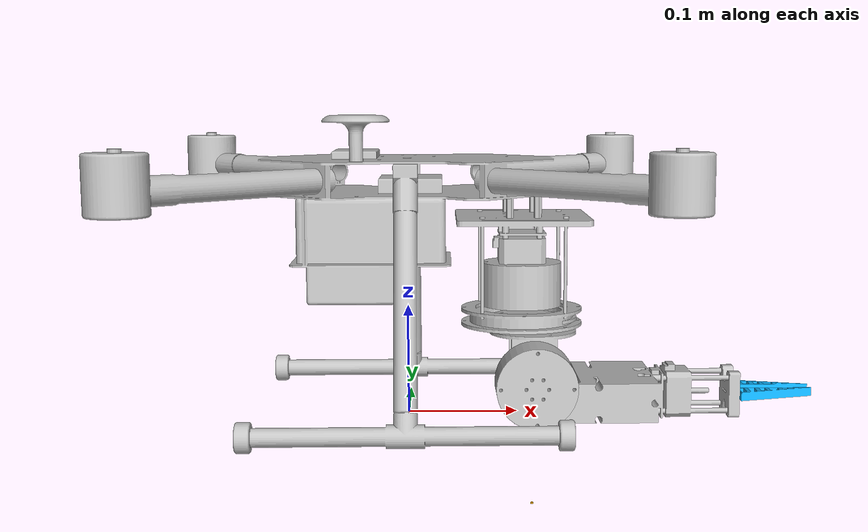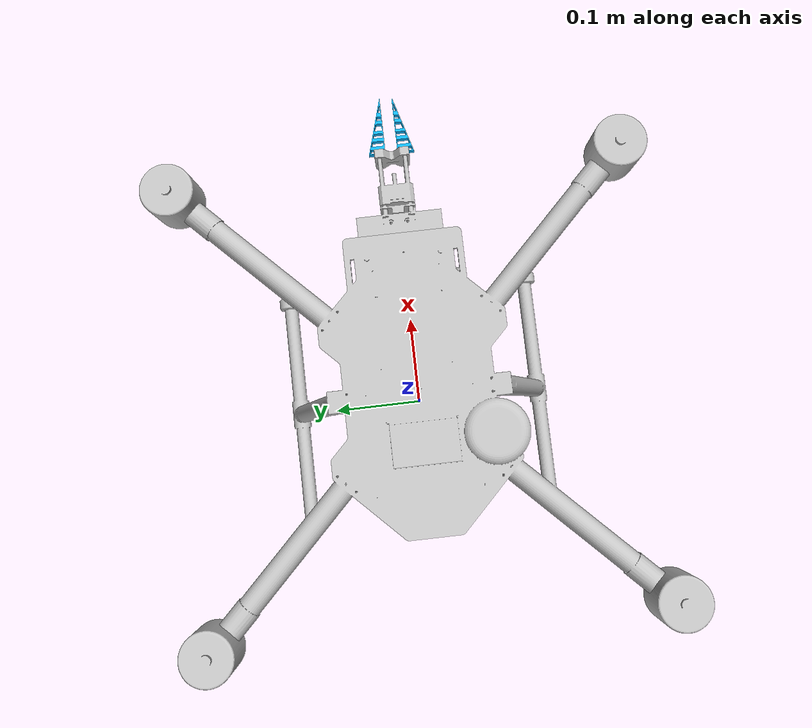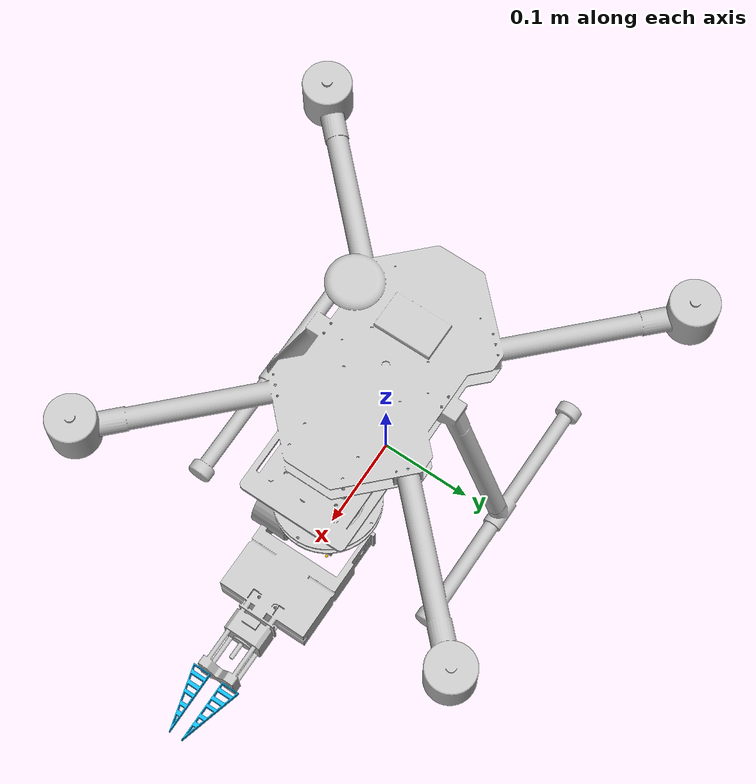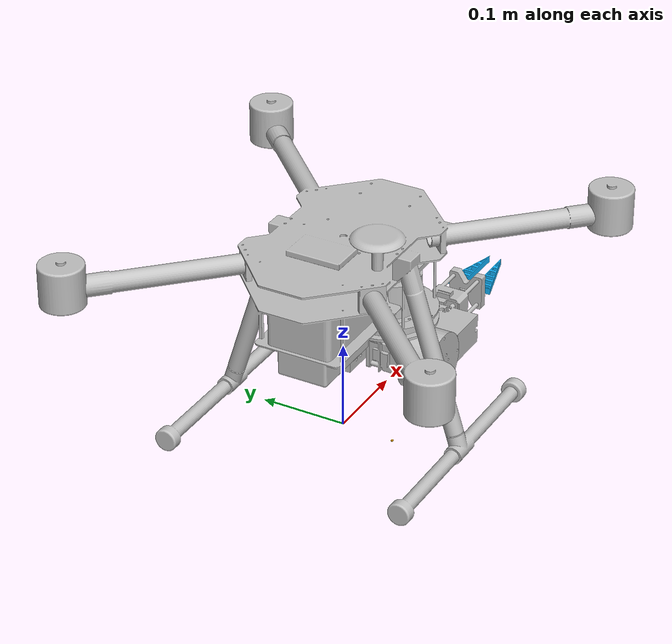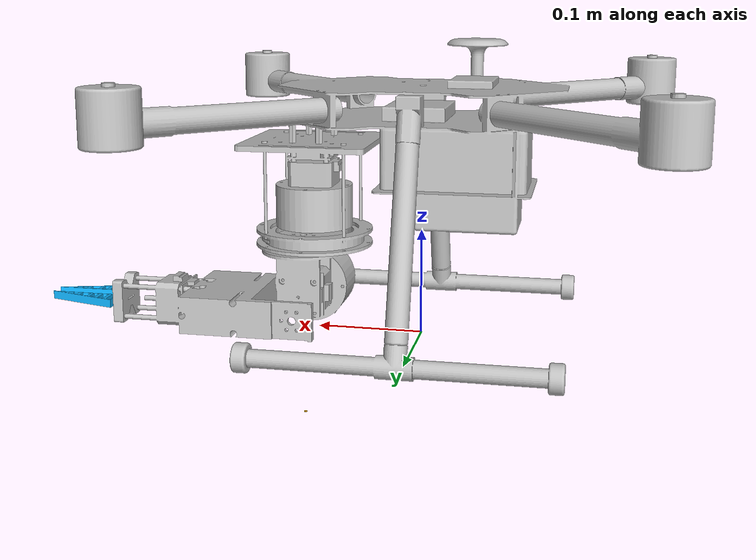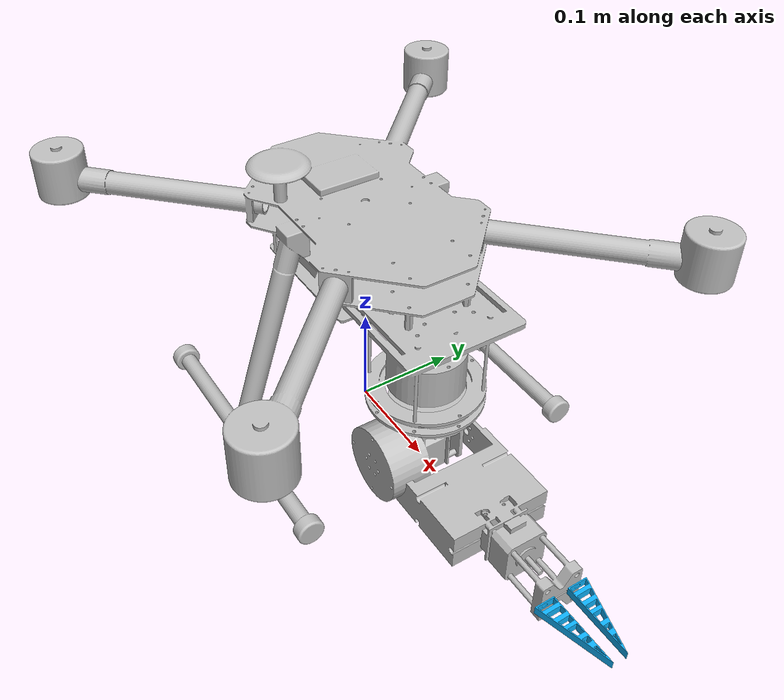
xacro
<?xml version="1.0"?>
<robot name="uam_v5" xmlns:xacro="http://www.ros.org/wiki/xacro">

  <xacro:property name="mesh_path" value="package://uav_arm_model/meshes/uam_v5" />

  <xacro:macro name="effort_transmission" params="joint_name">
    <transmission name="${joint_name}_trans">
      <type>transmission_interface/SimpleTransmission</type>
      <joint name="${joint_name}">
        <hardwareInterface>hardware_interface/EffortJointInterface</hardwareInterface>
      </joint>
      <actuator name="${joint_name}_motor">
        <hardwareInterface>hardware_interface/EffortJointInterface</hardwareInterface>
        <mechanicalReduction>1</mechanicalReduction>
      </actuator>
    </transmission>
  </xacro:macro>

  <link name="base_link">
    <inertial>
      <origin xyz="-0.044 0 -0.046" rpy="0 0 0"/>
      <mass value="3.6678"/>
      <inertia ixx="0.049436" ixy="0" ixz="0"
               iyy="0.052665" iyz="0" izz="0.086619"/>
    </inertial>
    <visual>
      <origin xyz="0 0 0" rpy="0 0 0"/>
      <geometry>
        <mesh filename="${mesh_path}/base_link.STL"/>
      </geometry>
      <material name="base_grey">
        <color rgba="0.75 0.75 0.75 1"/>
      </material>
    </visual>
    <visual>
      <origin xyz="0.115 0 -0.09" rpy="-3.1416 0 0"/>
      <geometry>
        <mesh filename="${mesh_path}/arm_fix_link.STL"/>
      </geometry>
    </visual>
    <collision>
      <origin xyz="0 0 0" rpy="0 0 0"/>
      <geometry>
        <mesh filename="${mesh_path}/base_link.STL"/>
      </geometry>
    </collision>
    <collision>
      <origin xyz="0.115 0 -0.09" rpy="-3.1416 0 0"/>
      <geometry>
        <mesh filename="${mesh_path}/arm_fix_link.STL"/>
      </geometry>
    </collision>
  </link>

  <link name="arm_link1">
    <inertial>
      <origin xyz="0 0 0" rpy="0 0 0"/>
      <mass value="0.593"/>
      <inertia ixx="0.000839" ixy="0" ixz="0"
               iyy="0.000791" iyz="0" izz="0.000943"/>
    </inertial>
    <visual>
      <geometry>
        <mesh filename="${mesh_path}/arm_link1.STL"/>
      </geometry>
      <material name="arm_grey">
        <color rgba="0.75 0.75 0.75 1"/>
      </material>
    </visual>
    <collision>
      <geometry>
        <mesh filename="${mesh_path}/arm_link1.STL"/>
      </geometry>
    </collision>
  </link>

  <joint name="arm_joint1" type="continuous">
    <origin xyz="0.115 0 0.09" rpy="-3.1416 0 0"/>
    <parent link="base_link"/>
    <child link="arm_link1"/>
    <axis xyz="0 0 1"/>
    <limit effort="4.0" velocity="4.0"/>
    <dynamics damping="0.12" friction="0.02"/>
  </joint>

  <link name="arm_link2">
    <inertial>
      <origin xyz="0.075 0 0" rpy="0 0 0"/>
      <mass value="0.594"/>
      <inertia ixx="0.000302" ixy="0" ixz="0"
               iyy="0.002811" iyz="0" izz="0.002717"/>
    </inertial>
    <visual>
      <geometry>
        <mesh filename="${mesh_path}/arm_link2.STL"/>
      </geometry>
      <material name="arm_grey_2">
        <color rgba="0.75 0.75 0.75 1"/>
      </material>
    </visual>
    <collision>
      <geometry>
        <mesh filename="${mesh_path}/arm_link2.STL"/>
      </geometry>
    </collision>
  </link>

  <joint name="arm_joint2" type="continuous">
    <origin xyz="0 0 0.072" rpy="-1.5708 0 0"/>
    <parent link="arm_link1"/>
    <child link="arm_link2"/>
    <axis xyz="0 0 1"/>
    <limit effort="4.0" velocity="4.0"/>
    <dynamics damping="0.20" friction="0.03"/>
  </joint>

  <link name="left_hand_link">
    <inertial>
      <origin xyz="0.02582393 -0.001 -0.00633685" rpy="0 0 0"/>
      <mass value="0.02"/>
      <inertia ixx="8e-06" ixy="0" ixz="0" iyy="8e-06" iyz="0" izz="8e-06"/>
    </inertial>
    <visual>
      <geometry>
        <mesh filename="${mesh_path}/left_hand_link.STL"/>
      </geometry>
      <material name="hand_blue">
        <color rgba="0.06 0.71 1 1"/>
      </material>
    </visual>
    <collision>
      <geometry>
        <mesh filename="${mesh_path}/left_hand_link.STL"/>
      </geometry>
    </collision>
  </link>

  <joint name="left_hand_joint" type="prismatic">
    <origin xyz="0.19 0.001 -0.0075" rpy="0 0 0"/>
    <parent link="arm_link2"/>
    <child link="left_hand_link"/>
    <axis xyz="0 0 1"/>
    <limit lower="-0.01" upper="0.01" effort="5.0" velocity="0.05"/>
    <dynamics damping="0.2" friction="0.0"/>
  </joint>

  <link name="right_hand_link">
    <inertial>
      <origin xyz="0.02582393 -0.001 0.00633685" rpy="0 0 0"/>
      <mass value="0.02"/>
      <inertia ixx="8e-06" ixy="0" ixz="0" iyy="8e-06" iyz="0" izz="8e-06"/>
    </inertial>
    <visual>
      <geometry>
        <mesh filename="${mesh_path}/right_hand_link.STL"/>
      </geometry>
      <material name="hand_blue_right">
        <color rgba="0.06 0.71 1 1"/>
      </material>
    </visual>
    <collision>
      <geometry>
        <mesh filename="${mesh_path}/right_hand_link.STL"/>
      </geometry>
    </collision>
  </link>

  <joint name="right_hand_joint" type="fixed">
    <origin xyz="0.19 0.001 0.0075" rpy="0 0 0"/>
    <parent link="arm_link2"/>
    <child link="right_hand_link"/>
  </joint>

  <xacro:effort_transmission joint_name="arm_joint1"/>
  <xacro:effort_transmission joint_name="arm_joint2"/>
  <xacro:effort_transmission joint_name="left_hand_joint"/>

  <gazebo>
    <plugin name="ros_control" filename="libgazebo_ros_control.so">
      <robotNamespace>/uav_arm</robotNamespace>
      <robotParam>/robot_description</robotParam>
      <controlPeriod>0.004</controlPeriod>
    </plugin>
  </gazebo>

</robot>
